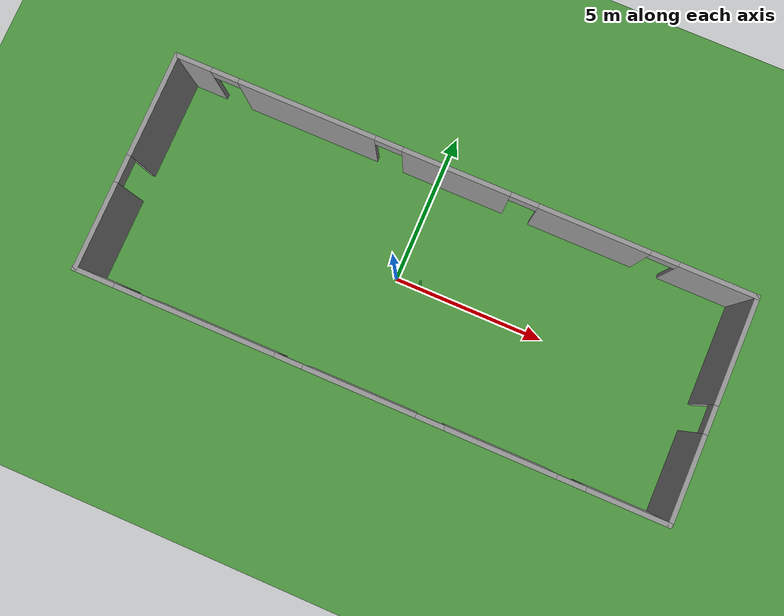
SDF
<sdf version="1.7">
 <world name="default">
  <gravity>0 0 -9.8</gravity>
  <magnetic_field>6e-06 2.3e-05 -4.2e-05</magnetic_field>
  <atmosphere type="adiabatic"/>
  <physics type="ode">
   <max_step_size>0.001</max_step_size>
   <real_time_factor>1</real_time_factor>
   <real_time_update_rate>1000</real_time_update_rate>
  </physics>
  <scene><ambient>0.4 0.4 0.4 1</ambient><background>0.7 0.7 0.7 1</background><shadows>1</shadows></scene>
  <spherical_coordinates>
   <surface_model>EARTH_WGS84</surface_model>
   <latitude_deg>0</latitude_deg>
   <longitude_deg>0</longitude_deg>
   <elevation>0</elevation>
   <heading_deg>0</heading_deg>
  </spherical_coordinates>
  <model name="ground_plane">
   <static>1</static>
   <link name="link">
    <collision name="collision">
     <geometry><plane><normal>0 0 1</normal><size>100 100</size></plane></geometry>
     <surface><friction><ode><mu>100</mu><mu2>50</mu2></ode></friction></surface>
    </collision>
    <visual name="visual">
     <geometry><plane><normal>0 0 1</normal><size>100 100</size></plane></geometry>
     <material>
      <script><uri>file://media/materials/scripts/gazebo.material</uri><name>Gazebo/Grass</name></script>
     </material>
    </visual>
   </link>
  </model>
  <model name="pole">
   <link name="link_0">
    <inertial>
     <mass>0.00923403</mass>
     <inertia>
      <ixx>0.00305283</ixx>
      <ixy>0</ixy>
      <ixz>0</ixz>
      <iyy>0.00305283</iyy>
      <iyz>0</iyz>
      <izz>5.33269e-06</izz>
     </inertia>
    </inertial>
    <visual name="visual">
     <geometry><cylinder><radius>0.0339854</radius><length>1.99093</length></cylinder></geometry>
     <material>
      <lighting>1</lighting>
      <script><uri>file://media/materials/scripts/gazebo.material</uri><name>Gazebo/Green</name></script>
      <shader type="pixel"/>
     </material>
    </visual>
    <collision name="collision">
     <geometry><cylinder><radius>0.033985</radius><length>1.99093</length></cylinder></geometry>
     <surface>
      <friction>
       <ode><mu>1</mu><mu2>1</mu2><fdir1>0 0 0</fdir1><slip1>0</slip1><slip2>0</slip2></ode>
       <torsional>
        <coefficient>1</coefficient>
        <patch_radius>0</patch_radius>
        <surface_radius>0</surface_radius>
        <use_patch_radius>1</use_patch_radius>
        <ode><slip>0</slip></ode>
       </torsional>
      </friction>
      <bounce><restitution_coefficient>0</restitution_coefficient><threshold>1e+06</threshold></bounce>
      <contact>
       <collide_without_contact>0</collide_without_contact>
       <collide_without_contact_bitmask>1</collide_without_contact_bitmask>
       <collide_bitmask>1</collide_bitmask>
       <ode>
        <soft_cfm>0</soft_cfm>
        <soft_erp>0.2</soft_erp>
        <kp>1e+13</kp>
        <kd>1</kd>
        <max_vel>0.01</max_vel>
        <min_depth>0</min_depth>
       </ode>
       <bullet>
        <split_impulse>1</split_impulse>
        <split_impulse_penetration_threshold>-0.01</split_impulse_penetration_threshold>
        <soft_cfm>0</soft_cfm>
        <soft_erp>0.2</soft_erp>
        <kp>1e+13</kp>
        <kd>1</kd>
       </bullet>
      </contact>
     </surface>
    </collision>
   </link>
   <static>0</static>
   <pose>0.827468 0.005884 0.995456 3e-06 4e-06 3.6e-05</pose>
  </model>
  <model name="pole">
   <link name="link_0">
    <inertial>
     <mass>0.00923403</mass>
     <inertia>
      <ixx>0.00305283</ixx>
      <ixy>0</ixy>
      <ixz>0</ixz>
      <iyy>0.00305283</iyy>
      <iyz>0</iyz>
      <izz>5.33269e-06</izz>
     </inertia>
    </inertial>
    <visual name="visual">
     <geometry><cylinder><radius>0.0339854</radius><length>1.99093</length></cylinder></geometry>
     <material>
      <lighting>1</lighting>
      <script><uri>file://media/materials/scripts/gazebo.material</uri><name>Gazebo/Green</name></script>
      <shader type="pixel"/>
     </material>
    </visual>
    <collision name="collision">
     <geometry><cylinder><radius>0.033985</radius><length>1.99093</length></cylinder></geometry>
     <surface>
      <friction>
       <ode><mu>1</mu><mu2>1</mu2><fdir1>0 0 0</fdir1><slip1>0</slip1><slip2>0</slip2></ode>
       <torsional>
        <coefficient>1</coefficient>
        <patch_radius>0</patch_radius>
        <surface_radius>0</surface_radius>
        <use_patch_radius>1</use_patch_radius>
        <ode><slip>0</slip></ode>
       </torsional>
      </friction>
      <bounce><restitution_coefficient>0</restitution_coefficient><threshold>1e+06</threshold></bounce>
      <contact>
       <collide_without_contact>0</collide_without_contact>
       <collide_without_contact_bitmask>1</collide_without_contact_bitmask>
       <collide_bitmask>1</collide_bitmask>
       <ode>
        <soft_cfm>0</soft_cfm>
        <soft_erp>0.2</soft_erp>
        <kp>1e+13</kp>
        <kd>1</kd>
        <max_vel>0.01</max_vel>
        <min_depth>0</min_depth>
       </ode>
       <bullet>
        <split_impulse>1</split_impulse>
        <split_impulse_penetration_threshold>-0.01</split_impulse_penetration_threshold>
        <soft_cfm>0</soft_cfm>
        <soft_erp>0.2</soft_erp>
        <kp>1e+13</kp>
        <kd>1</kd>
       </bullet>
      </contact>
     </surface>
    </collision>
   </link>
   <static>0</static>
   <pose>0.827468 0.005884 0.995456 3e-06 4e-06 3.6e-05</pose>
  </model>
  <model name="hallway_new">
   <pose>0.725871 -0.163213 0 0 -0 0</pose>
   <link name="Wall_0">
    <pose>-0.009711 -3.56631 0 0 -0 3.14159</pose>
    <visual name="Wall_0_Visual_0">
     <pose>-8.17788 0 1.25 0 -0 0</pose>
     <geometry><box><size>2.64423 0.15 2.5</size></box></geometry>
     <material>
      <script><uri>file://media/materials/scripts/gazebo.material</uri><name>Gazebo/Grey</name></script>
      <ambient>1 1 1 1</ambient>
     </material>
     <meta><layer>0</layer></meta>
    </visual>
    <collision name="Wall_0_Collision_0">
     <geometry><box><size>2.64423 0.15 2.5</size></box></geometry>
     <pose>-8.17788 0 1.25 0 -0 0</pose>
    </collision>
    <visual name="Wall_0_Visual_1">
     <pose>-4.20094 0 1.25 0 -0 0</pose>
     <geometry><box><size>3.50966 0.15 2.5</size></box></geometry>
     <material>
      <script><uri>file://media/materials/scripts/gazebo.material</uri><name>Gazebo/Grey</name></script>
      <ambient>1 1 1 1</ambient>
     </material>
     <meta><layer>0</layer></meta>
    </visual>
    <collision name="Wall_0_Collision_1">
     <geometry><box><size>3.50966 0.15 2.5</size></box></geometry>
     <pose>-4.20094 0 1.25 0 -0 0</pose>
    </collision>
    <visual name="Wall_0_Visual_2">
     <pose>0.249173 0 1.25 0 -0 0</pose>
     <geometry><box><size>3.59057 0.15 2.5</size></box></geometry>
     <material>
      <script><uri>file://media/materials/scripts/gazebo.material</uri><name>Gazebo/Grey</name></script>
      <ambient>1 1 1 1</ambient>
     </material>
     <meta><layer>0</layer></meta>
    </visual>
    <collision name="Wall_0_Collision_2">
     <geometry><box><size>3.59057 0.15 2.5</size></box></geometry>
     <pose>0.249173 0 1.25 0 -0 0</pose>
    </collision>
    <visual name="Wall_0_Visual_3">
     <pose>5.08361 0 1.25 0 -0 0</pose>
     <geometry><box><size>4.27831 0.15 2.5</size></box></geometry>
     <material>
      <script><uri>file://media/materials/scripts/gazebo.material</uri><name>Gazebo/Grey</name></script>
      <ambient>1 1 1 1</ambient>
     </material>
     <meta><layer>0</layer></meta>
    </visual>
    <collision name="Wall_0_Collision_3">
     <geometry><box><size>4.27831 0.15 2.5</size></box></geometry>
     <pose>5.08361 0 1.25 0 -0 0</pose>
    </collision>
    <visual name="Wall_0_Visual_4">
     <pose>8.81139 0 1.25 0 -0 0</pose>
     <geometry><box><size>1.37723 0.15 2.5</size></box></geometry>
     <material>
      <script><uri>file://media/materials/scripts/gazebo.material</uri><name>Gazebo/Grey</name></script>
      <ambient>1 1 1 1</ambient>
     </material>
     <meta><layer>0</layer></meta>
    </visual>
    <collision name="Wall_0_Collision_4">
     <geometry><box><size>1.37723 0.15 2.5</size></box></geometry>
     <pose>8.81139 0 1.25 0 -0 0</pose>
    </collision>
    <visual name="Wall_0_Visual_5">
     <pose>-6.40577 0 2.25 0 -0 0</pose>
     <geometry><box><size>0.9 0.15 0.5</size></box></geometry>
     <material>
      <script><uri>file://media/materials/scripts/gazebo.material</uri><name>Gazebo/Grey</name></script>
      <ambient>1 1 1 1</ambient>
     </material>
     <meta><layer>0</layer></meta>
    </visual>
    <collision name="Wall_0_Collision_5">
     <geometry><box><size>0.9 0.15 0.5</size></box></geometry>
     <pose>-6.40577 0 2.25 0 -0 0</pose>
    </collision>
    <visual name="Wall_0_Visual_6">
     <pose>-1.99611 0 2.25 0 -0 0</pose>
     <geometry><box><size>0.9 0.15 0.5</size></box></geometry>
     <material>
      <script><uri>file://media/materials/scripts/gazebo.material</uri><name>Gazebo/Grey</name></script>
      <ambient>1 1 1 1</ambient>
     </material>
     <meta><layer>0</layer></meta>
    </visual>
    <collision name="Wall_0_Collision_6">
     <geometry><box><size>0.9 0.15 0.5</size></box></geometry>
     <pose>-1.99611 0 2.25 0 -0 0</pose>
    </collision>
    <visual name="Wall_0_Visual_7">
     <pose>2.49446 0 2.25 0 -0 0</pose>
     <geometry><box><size>0.9 0.15 0.5</size></box></geometry>
     <material>
      <script><uri>file://media/materials/scripts/gazebo.material</uri><name>Gazebo/Grey</name></script>
      <ambient>1 1 1 1</ambient>
     </material>
     <meta><layer>0</layer></meta>
    </visual>
    <collision name="Wall_0_Collision_7">
     <geometry><box><size>0.9 0.15 0.5</size></box></geometry>
     <pose>2.49446 0 2.25 0 -0 0</pose>
    </collision>
    <visual name="Wall_0_Visual_8">
     <pose>7.67277 0 2.25 0 -0 0</pose>
     <geometry><box><size>0.9 0.15 0.5</size></box></geometry>
     <material>
      <script><uri>file://media/materials/scripts/gazebo.material</uri><name>Gazebo/Grey</name></script>
      <ambient>1 1 1 1</ambient>
     </material>
     <meta><layer>0</layer></meta>
    </visual>
    <collision name="Wall_0_Collision_8">
     <geometry><box><size>0.9 0.15 0.5</size></box></geometry>
     <pose>7.67277 0 2.25 0 -0 0</pose>
    </collision>
   </link>
   <link name="Wall_2">
    <pose>0.00971 3.56631 0 0 -0 0</pose>
    <visual name="Wall_2_Visual_0">
     <pose>-8.88178 0 1.25 0 -0 0</pose>
     <geometry><box><size>1.23644 0.15 2.5</size></box></geometry>
     <material>
      <script><uri>file://media/materials/scripts/gazebo.material</uri><name>Gazebo/Grey</name></script>
      <ambient>1 1 1 1</ambient>
     </material>
     <meta><layer>0</layer></meta>
    </visual>
    <collision name="Wall_2_Collision_0">
     <geometry><box><size>1.23644 0.15 2.5</size></box></geometry>
     <pose>-8.88178 0 1.25 0 -0 0</pose>
    </collision>
    <visual name="Wall_2_Visual_1">
     <pose>-5.10304 0 1.25 0 -0 0</pose>
     <geometry><box><size>4.52105 0.15 2.5</size></box></geometry>
     <material>
      <script><uri>file://media/materials/scripts/gazebo.material</uri><name>Gazebo/Grey</name></script>
      <ambient>1 1 1 1</ambient>
     </material>
     <meta><layer>0</layer></meta>
    </visual>
    <collision name="Wall_2_Collision_1">
     <geometry><box><size>4.52105 0.15 2.5</size></box></geometry>
     <pose>-5.10304 0 1.25 0 -0 0</pose>
    </collision>
    <visual name="Wall_2_Visual_2">
     <pose>-0.187683 0 1.25 0 -0 0</pose>
     <geometry><box><size>3.50966 0.15 2.5</size></box></geometry>
     <material>
      <script><uri>file://media/materials/scripts/gazebo.material</uri><name>Gazebo/Grey</name></script>
      <ambient>1 1 1 1</ambient>
     </material>
     <meta><layer>0</layer></meta>
    </visual>
    <collision name="Wall_2_Collision_2">
     <geometry><box><size>3.50966 0.15 2.5</size></box></geometry>
     <pose>-0.187683 0 1.25 0 -0 0</pose>
    </collision>
    <visual name="Wall_2_Visual_3">
     <pose>4.26243 0 1.25 0 -0 0</pose>
     <geometry><box><size>3.59057 0.15 2.5</size></box></geometry>
     <material>
      <script><uri>file://media/materials/scripts/gazebo.material</uri><name>Gazebo/Grey</name></script>
      <ambient>1 1 1 1</ambient>
     </material>
     <meta><layer>0</layer></meta>
    </visual>
    <collision name="Wall_2_Collision_3">
     <geometry><box><size>3.59057 0.15 2.5</size></box></geometry>
     <pose>4.26243 0 1.25 0 -0 0</pose>
    </collision>
    <visual name="Wall_2_Visual_4">
     <pose>8.22886 0 1.25 0 -0 0</pose>
     <geometry><box><size>2.54229 0.15 2.5</size></box></geometry>
     <material>
      <script><uri>file://media/materials/scripts/gazebo.material</uri><name>Gazebo/Grey</name></script>
      <ambient>1 1 1 1</ambient>
     </material>
     <meta><layer>0</layer></meta>
    </visual>
    <collision name="Wall_2_Collision_4">
     <geometry><box><size>2.54229 0.15 2.5</size></box></geometry>
     <pose>8.22886 0 1.25 0 -0 0</pose>
    </collision>
    <visual name="Wall_2_Visual_5">
     <pose>-7.81356 0 2.25 0 -0 0</pose>
     <geometry><box><size>0.9 0.15 0.5</size></box></geometry>
     <material>
      <script><uri>file://media/materials/scripts/gazebo.material</uri><name>Gazebo/Grey</name></script>
      <ambient>1 1 1 1</ambient>
     </material>
     <meta><layer>0</layer></meta>
    </visual>
    <collision name="Wall_2_Collision_5">
     <geometry><box><size>0.9 0.15 0.5</size></box></geometry>
     <pose>-7.81356 0 2.25 0 -0 0</pose>
    </collision>
    <visual name="Wall_2_Visual_6">
     <pose>-2.39251 0 2.25 0 -0 0</pose>
     <geometry><box><size>0.9 0.15 0.5</size></box></geometry>
     <material>
      <script><uri>file://media/materials/scripts/gazebo.material</uri><name>Gazebo/Grey</name></script>
      <ambient>1 1 1 1</ambient>
     </material>
     <meta><layer>0</layer></meta>
    </visual>
    <collision name="Wall_2_Collision_6">
     <geometry><box><size>0.9 0.15 0.5</size></box></geometry>
     <pose>-2.39251 0 2.25 0 -0 0</pose>
    </collision>
    <visual name="Wall_2_Visual_7">
     <pose>2.01715 0 2.25 0 -0 0</pose>
     <geometry><box><size>0.9 0.15 0.5</size></box></geometry>
     <material>
      <script><uri>file://media/materials/scripts/gazebo.material</uri><name>Gazebo/Grey</name></script>
      <ambient>1 1 1 1</ambient>
     </material>
     <meta><layer>0</layer></meta>
    </visual>
    <collision name="Wall_2_Collision_7">
     <geometry><box><size>0.9 0.15 0.5</size></box></geometry>
     <pose>2.01715 0 2.25 0 -0 0</pose>
    </collision>
    <visual name="Wall_2_Visual_8">
     <pose>6.50772 0 2.25 0 -0 0</pose>
     <geometry><box><size>0.9 0.15 0.5</size></box></geometry>
     <material>
      <script><uri>file://media/materials/scripts/gazebo.material</uri><name>Gazebo/Grey</name></script>
      <ambient>1 1 1 1</ambient>
     </material>
     <meta><layer>0</layer></meta>
    </visual>
    <collision name="Wall_2_Collision_8">
     <geometry><box><size>0.9 0.15 0.5</size></box></geometry>
     <pose>6.50772 0 2.25 0 -0 0</pose>
    </collision>
   </link>
   <link name="Wall_4">
    <pose>-9.41529 0.016309 0 0 -0 -1.5708</pose>
    <visual name="Wall_4_Visual_0">
     <pose>-1.88735 0 1.25 0 -0 0</pose>
     <geometry><box><size>3.47529 0.15 2.5</size></box></geometry>
     <material>
      <script><uri>file://media/materials/scripts/gazebo.material</uri><name>Gazebo/Grey</name></script>
      <ambient>1 1 1 1</ambient>
     </material>
     <meta><layer>0</layer></meta>
    </visual>
    <collision name="Wall_4_Collision_0">
     <geometry><box><size>3.47529 0.15 2.5</size></box></geometry>
     <pose>-1.88735 0 1.25 0 -0 0</pose>
    </collision>
    <visual name="Wall_4_Visual_1">
     <pose>2.18765 0 1.25 0 -0 0</pose>
     <geometry><box><size>2.87471 0.15 2.5</size></box></geometry>
     <material>
      <script><uri>file://media/materials/scripts/gazebo.material</uri><name>Gazebo/Grey</name></script>
      <ambient>1 1 1 1</ambient>
     </material>
     <meta><layer>0</layer></meta>
    </visual>
    <collision name="Wall_4_Collision_1">
     <geometry><box><size>2.87471 0.15 2.5</size></box></geometry>
     <pose>2.18765 0 1.25 0 -0 0</pose>
    </collision>
    <visual name="Wall_4_Visual_2">
     <pose>0.300294 0 2.25 0 -0 0</pose>
     <geometry><box><size>0.9 0.15 0.5</size></box></geometry>
     <material>
      <script><uri>file://media/materials/scripts/gazebo.material</uri><name>Gazebo/Grey</name></script>
      <ambient>1 1 1 1</ambient>
     </material>
     <meta><layer>0</layer></meta>
    </visual>
    <collision name="Wall_4_Collision_2">
     <geometry><box><size>0.9 0.15 0.5</size></box></geometry>
     <pose>0.300294 0 2.25 0 -0 0</pose>
    </collision>
   </link>
   <link name="Wall_6">
    <pose>9.43471 0.016309 0 0 -0 -1.5708</pose>
    <visual name="Wall_6_Visual_0">
     <pose>-1.86712 0 1.25 0 -0 0</pose>
     <geometry><box><size>3.51575 0.15 2.5</size></box></geometry>
     <material>
      <script><uri>file://media/materials/scripts/gazebo.material</uri><name>Gazebo/Grey</name></script>
      <ambient>1 1 1 1</ambient>
     </material>
     <meta><layer>0</layer></meta>
    </visual>
    <collision name="Wall_6_Collision_0">
     <geometry><box><size>3.51575 0.15 2.5</size></box></geometry>
     <pose>-1.86712 0 1.25 0 -0 0</pose>
    </collision>
    <visual name="Wall_6_Visual_1">
     <pose>2.20788 0 1.25 0 -0 0</pose>
     <geometry><box><size>2.83425 0.15 2.5</size></box></geometry>
     <material>
      <script><uri>file://media/materials/scripts/gazebo.material</uri><name>Gazebo/Grey</name></script>
      <ambient>1 1 1 1</ambient>
     </material>
     <meta><layer>0</layer></meta>
    </visual>
    <collision name="Wall_6_Collision_1">
     <geometry><box><size>2.83425 0.15 2.5</size></box></geometry>
     <pose>2.20788 0 1.25 0 -0 0</pose>
    </collision>
    <visual name="Wall_6_Visual_2">
     <pose>0.340749 0 2.25 0 -0 0</pose>
     <geometry><box><size>0.9 0.15 0.5</size></box></geometry>
     <material>
      <script><uri>file://media/materials/scripts/gazebo.material</uri><name>Gazebo/Grey</name></script>
      <ambient>1 1 1 1</ambient>
     </material>
     <meta><layer>0</layer></meta>
    </visual>
    <collision name="Wall_6_Collision_2">
     <geometry><box><size>0.9 0.15 0.5</size></box></geometry>
     <pose>0.340749 0 2.25 0 -0 0</pose>
    </collision>
   </link>
   <static>1</static>
  </model>
 </world>
</sdf>
